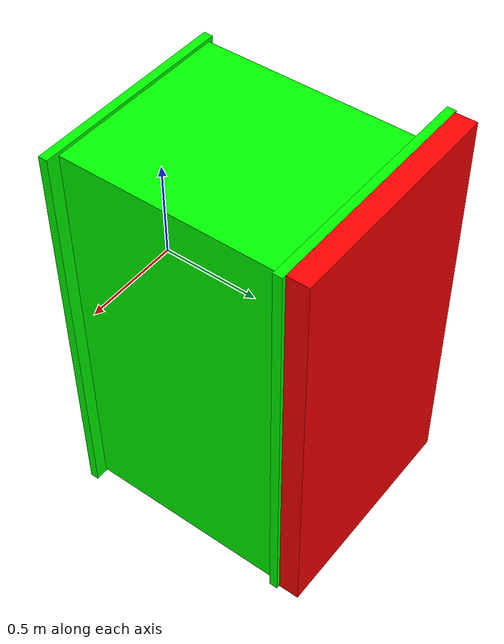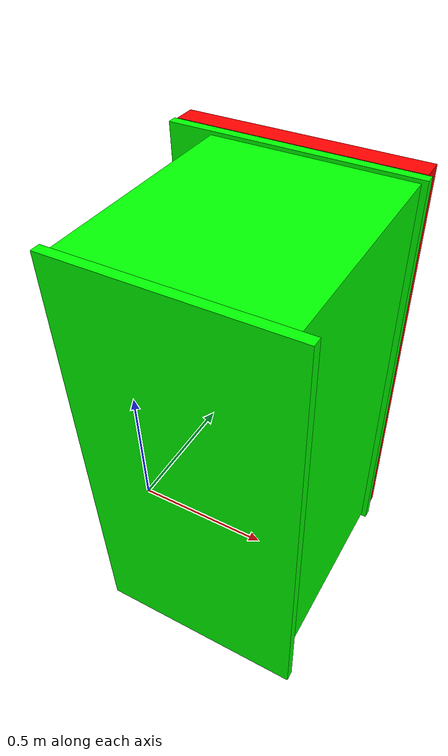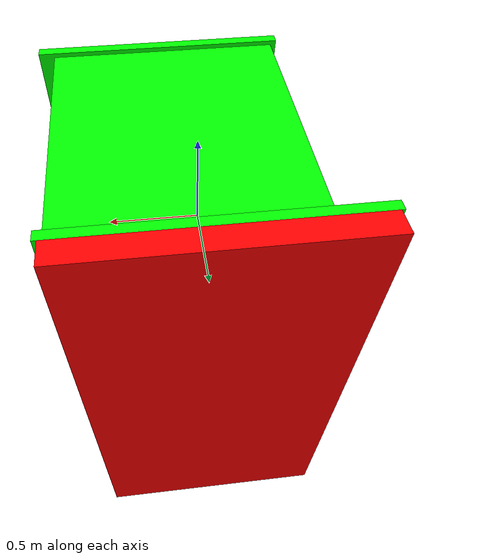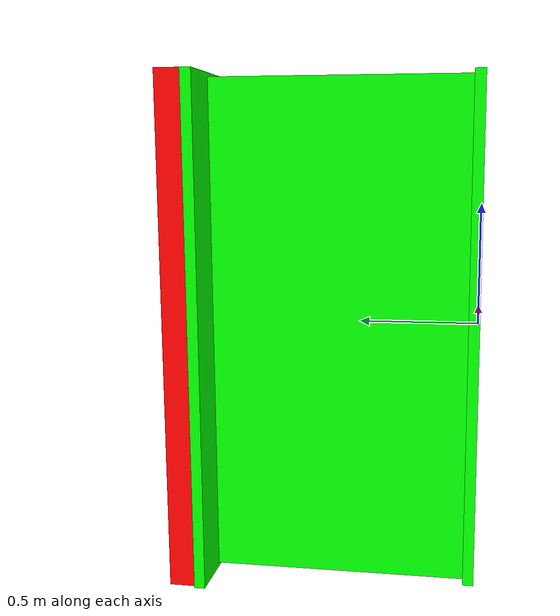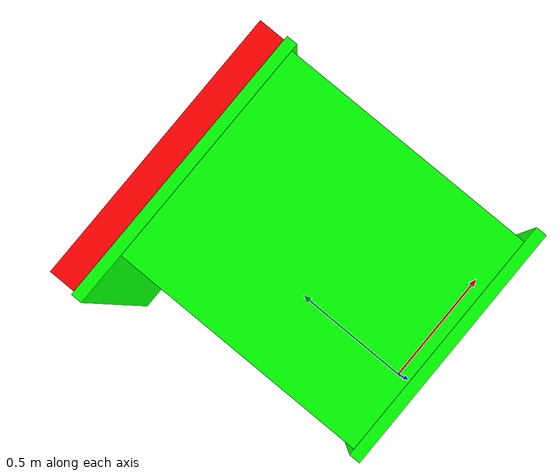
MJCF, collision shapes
<mujoco model="StandardIslandHeight_c3ccfdb2">
  <compiler autolimits="true" boundmass="0.01" angle="radian"/>
  <default>
    <default class="/">
      <default class="__VISUAL_MJT__">
        <geom contype="0" conaffinity="0" group="0" mass="1e-08"/>
      </default>
      <default class="__STRUCTURAL_MJT__">
        <geom contype="8" conaffinity="15" group="4" friction="0.90000000000000002 0.90000000000000002 0.001" density="500" solref="0.025000000000000001 1" solimp="0.998 0.998 0.001"/>
      </default>
      <default class="__DYNAMIC_MJT__">
        <geom contype="1" conaffinity="15" group="4" friction="0.90000000000000002 0.90000000000000002 0.001" density="500" solref="0.025000000000000001 1" solimp="0.998 0.998 0.001"/>
      </default>
      <default class="__ARTICULABLE_DYNAMIC_MJT__">
        <geom contype="0" conaffinity="7" group="4" friction="0.90000000000000002 0.90000000000000002 0.001" density="500" solref="0.025000000000000001 1" solimp="0.998 0.998 0.001"/>
      </default>
    </default>
  </default>
  <asset>
    <texture name="DarkWoodSmooth" type="2d" file="WoodGrains1.png"/>
    <material name="material_DarkWoodSmooth" class="/" texture="DarkWoodSmooth" specular="0.5" shininess="0.5" rgba="0.245283 0.1689213 0.11372549999999999 1"/>
    <texture name="LightWhite" type="2d" file="TexturesCom_MarbleNoisy0062_1_seamless_S.png"/>
    <material name="material_LightWhite" class="/" texture="LightWhite" specular="0.5" shininess="0.5" rgba="0.88970590000000005 0.88970590000000005 0.88970590000000005 1"/>
    <material name="material_PureBlack_Wood" class="/" specular="0.5" shininess="0.5" rgba="0 0 0 1"/>
    <mesh name="StandardIslandHeight_c3ccfdb2_StandardIslandHeight_c3ccfdb2_0" class="/" file="StandardIslandHeight_c3ccfdb2_StandardIslandHeight_c3ccfdb2/StandardIslandHeight_c3ccfdb2_StandardIslandHeight_c3ccfdb2_0.obj" scale="1 1 1" inertia="legacy"/>
    <mesh name="StandardIslandHeight_c3ccfdb2_StandardIslandHeight_c3ccfdb2_1" class="/" file="StandardIslandHeight_c3ccfdb2_StandardIslandHeight_c3ccfdb2/StandardIslandHeight_c3ccfdb2_StandardIslandHeight_c3ccfdb2_1.obj" scale="1 1 1" inertia="legacy"/>
    <mesh name="StandardIslandHeight_c3ccfdb2_StandardIslandHeight_c3ccfdb2_2" class="/" file="StandardIslandHeight_c3ccfdb2_StandardIslandHeight_c3ccfdb2/StandardIslandHeight_c3ccfdb2_StandardIslandHeight_c3ccfdb2_2.obj" scale="1 1 1" inertia="legacy"/>
  </asset>
  <worldbody>
    <body name="StandardIslandHeight_c3ccfdb2">
      <body name="StandardIslandHeight_c3ccfdb2_StandardIslandHeight_c3ccfdb2" pos="-0 0 0" quat="1 0 0 0">
        <geom name="StandardIslandHeight_c3ccfdb2_StandardIslandHeight_c3ccfdb2_0" class="__VISUAL_MJT__" type="mesh" material="material_DarkWoodSmooth" mesh="StandardIslandHeight_c3ccfdb2_StandardIslandHeight_c3ccfdb2_0"/>
        <geom name="StandardIslandHeight_c3ccfdb2_StandardIslandHeight_c3ccfdb2_1" class="__VISUAL_MJT__" type="mesh" material="material_LightWhite" mesh="StandardIslandHeight_c3ccfdb2_StandardIslandHeight_c3ccfdb2_1"/>
        <geom name="StandardIslandHeight_c3ccfdb2_StandardIslandHeight_c3ccfdb2_2" class="__VISUAL_MJT__" type="mesh" material="material_PureBlack_Wood" mesh="StandardIslandHeight_c3ccfdb2_StandardIslandHeight_c3ccfdb2_2"/>
        <site name="StandardIslandHeight_c3ccfdb2_StandardIslandHeight_c3ccfdb2_Receptacle_0" class="/" type="box" rgba="1 0 0 1" size="0.55278110504150391 0.051499977707862854 1.0110956430435181" pos="0.059099875390529633 1.1531000137329102 -0.0010000020265579224" quat="0 1 0 0"/>
        <geom name="StandardIslandHeight_c3ccfdb2_StandardIslandHeight_c3ccfdb2_PrimitiveCollider_0" class="__DYNAMIC_MJT__" type="box" size="0.49465647339820862 0.021598927676677704 1.0108959674835205" rgba="0 1 0 1" pos="0.17000000178813934 0.017999999225139618 -0.0022773146629333496" quat="0 1 0 0"/>
        <geom name="StandardIslandHeight_c3ccfdb2_StandardIslandHeight_c3ccfdb2_PrimitiveCollider_1" class="__DYNAMIC_MJT__" type="box" size="0.45216718316078186 0.52207344770431519 0.99456667900085449" rgba="0 1 0 1" pos="0.15038956701755524 0.55134207010269165 -0.0022646188735961914" quat="0 1 0 0"/>
        <geom name="StandardIslandHeight_c3ccfdb2_StandardIslandHeight_c3ccfdb2_PrimitiveCollider_2" class="__DYNAMIC_MJT__" type="box" size="0.568195641040802 0.021598927676677704 1.0108959674835205" rgba="0 1 0 1" pos="0.060508415102958679 1.0789999961853027 -0.0022772550582885742" quat="0 1 0 0"/>
      </body>
    </body>
  </worldbody>
</mujoco>
